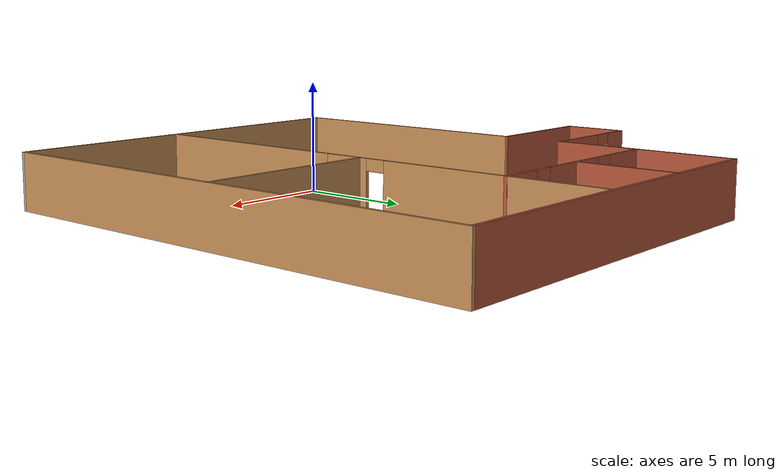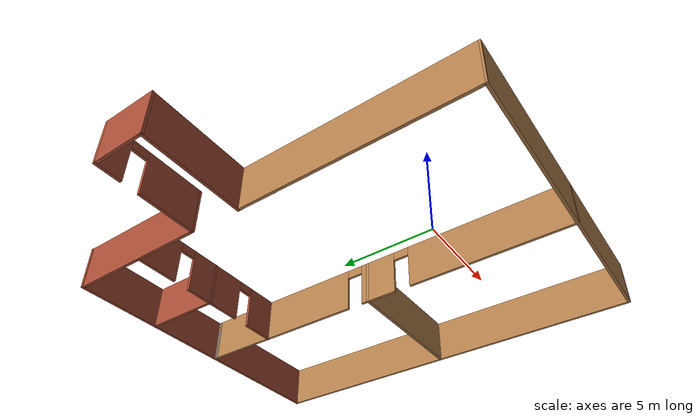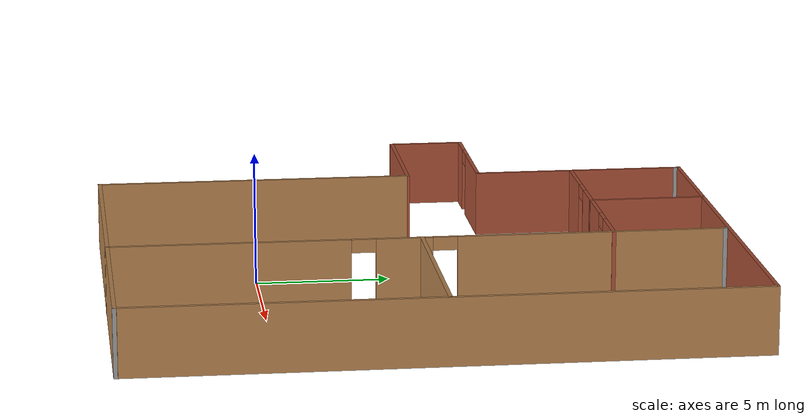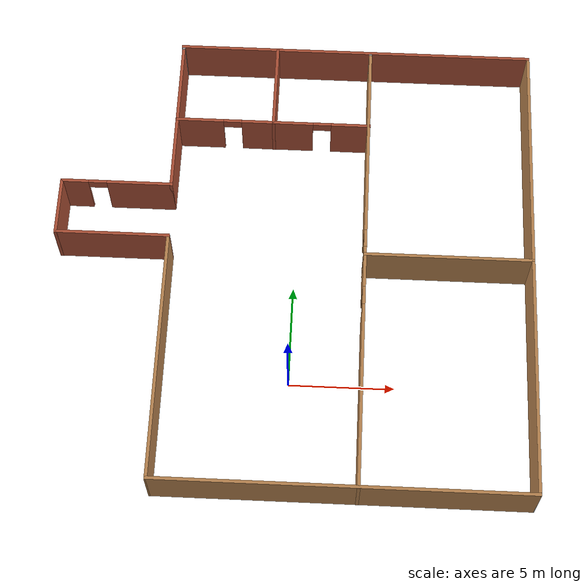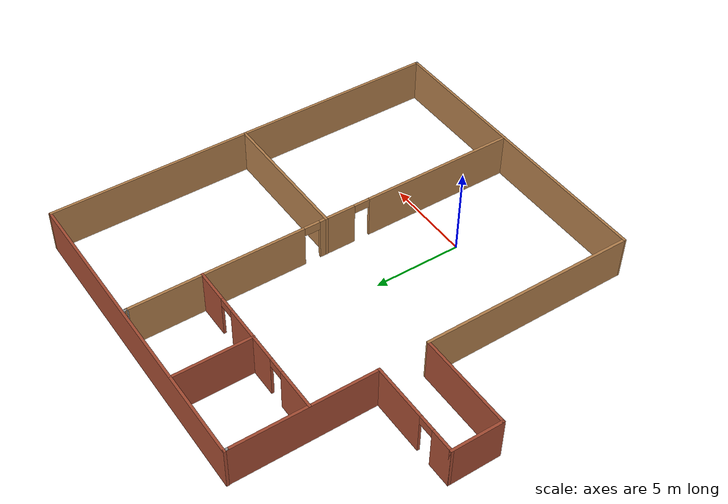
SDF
<?xml version='1.0'?>
<sdf version='1.6'>
  <model name='Building'>
    <pose frame=''>-0.060265 5.8561 0 0 -0 0</pose>
    <link name='Wall_0'>
      <pose frame=''>-8.79073 3.4119 0 0 -0 0</pose>
      <visual name='Wall_0_Visual_0'>
        <pose frame=''>-2.06075 0 1.25 0 -0 0</pose>
        <geometry>
          <box>
            <size>1.3785 0.15 2.5</size>
          </box>
        </geometry>
        <material>
          <script>
            <uri>file://media/materials/scripts/gazebo.material</uri>
            <name>Gazebo/Bricks</name>
          </script>
          <ambient>1 1 1 1</ambient>
        </material>
        <meta>
          <layer>0</layer>
        </meta>
      </visual>
      <collision name='Wall_0_Collision_0'>
        <geometry>
          <box>
            <size>1.3785 0.15 2.5</size>
          </box>
        </geometry>
        <pose frame=''>-2.06075 0 1.25 0 -0 0</pose>
      </collision>
      <visual name='Wall_0_Visual_1'>
        <pose frame=''>1.13925 0 1.25 0 -0 0</pose>
        <geometry>
          <box>
            <size>3.2215 0.15 2.5</size>
          </box>
        </geometry>
        <material>
          <script>
            <uri>file://media/materials/scripts/gazebo.material</uri>
            <name>Gazebo/Bricks</name>
          </script>
          <ambient>1 1 1 1</ambient>
        </material>
        <meta>
          <layer>0</layer>
        </meta>
      </visual>
      <collision name='Wall_0_Collision_1'>
        <geometry>
          <box>
            <size>3.2215 0.15 2.5</size>
          </box>
        </geometry>
        <pose frame=''>1.13925 0 1.25 0 -0 0</pose>
      </collision>
      <visual name='Wall_0_Visual_2'>
        <pose frame=''>-0.921499 0 2.25 0 -0 0</pose>
        <geometry>
          <box>
            <size>0.9 0.15 0.5</size>
          </box>
        </geometry>
        <material>
          <script>
            <uri>file://media/materials/scripts/gazebo.material</uri>
            <name>Gazebo/Bricks</name>
          </script>
          <ambient>1 1 1 1</ambient>
        </material>
        <meta>
          <layer>0</layer>
        </meta>
      </visual>
      <collision name='Wall_0_Collision_2'>
        <geometry>
          <box>
            <size>0.9 0.15 0.5</size>
          </box>
        </geometry>
        <pose frame=''>-0.921499 0 2.25 0 -0 0</pose>
      </collision>
    </link>
    <link name='Wall_1'>
      <collision name='Wall_1_Collision'>
        <geometry>
          <box>
            <size>8.232 0.15 2.5</size>
          </box>
        </geometry>
        <pose frame=''>0 0 1.25 0 -0 0</pose>
      </collision>
      <visual name='Wall_1_Visual'>
        <pose frame=''>0 0 1.25 0 -0 0</pose>
        <geometry>
          <box>
            <size>8.232 0.15 2.5</size>
          </box>
        </geometry>
        <material>
          <script>
            <uri>file://media/materials/scripts/gazebo.material</uri>
            <name>Gazebo/Bricks</name>
          </script>
          <ambient>1 1 1 1</ambient>
        </material>
        <meta>
          <layer>0</layer>
        </meta>
      </visual>
      <pose frame=''>-6.11573 7.4529 0 0 -0 1.5708</pose>
    </link>
    <link name='Wall_10'>
      <collision name='Wall_10_Collision'>
        <geometry>
          <box>
            <size>23 0.15 2.5</size>
          </box>
        </geometry>
        <pose frame=''>0 0 1.25 0 -0 0</pose>
      </collision>
      <visual name='Wall_10_Visual'>
        <pose frame=''>0 0 1.25 0 -0 0</pose>
        <geometry>
          <box>
            <size>23 0.15 2.5</size>
          </box>
        </geometry>
        <material>
          <script>
            <uri>file://media/materials/scripts/gazebo.material</uri>
            <name>Gazebo/Wood</name>
          </script>
          <ambient>0.996078 0.47451 0.0196078 1</ambient>
        </material>
        <meta>
          <layer>0</layer>
        </meta>
      </visual>
      <pose frame=''>11.4655 0.080949 0 0 0 -1.57078</pose>
    </link>
    <link name='Wall_14'>
      <collision name='Wall_14_Collision'>
        <geometry>
          <box>
            <size>17.629 0.15 2.5</size>
          </box>
        </geometry>
        <pose frame=''>0 0 1.25 0 -0 0</pose>
      </collision>
      <visual name='Wall_14_Visual'>
        <pose frame=''>0 0 1.25 0 -0 0</pose>
        <geometry>
          <box>
            <size>17.629 0.15 2.5</size>
          </box>
        </geometry>
        <material>
          <script>
            <uri>file://media/materials/scripts/gazebo.material</uri>
            <name>Gazebo/Wood</name>
          </script>
          <ambient>0.996078 0.47451 0.0196078 1</ambient>
        </material>
        <meta>
          <layer>0</layer>
        </meta>
      </visual>
      <pose frame=''>2.72077 -11.4971 0 0 -0 0</pose>
    </link>
    <link name='Wall_15'>
      <collision name='Wall_15_Collision'>
        <geometry>
          <box>
            <size>0.15 0.15 2.5</size>
          </box>
        </geometry>
        <pose frame=''>0 0 1.25 0 -0 0</pose>
      </collision>
      <visual name='Wall_15_Visual'>
        <pose frame=''>0 0 1.25 0 -0 0</pose>
        <geometry>
          <box>
            <size>0.15 0.15 2.5</size>
          </box>
        </geometry>
        <material>
          <script>
            <uri>file://media/materials/scripts/gazebo.material</uri>
            <name>Gazebo/Grey</name>
          </script>
          <ambient>1 1 1 1</ambient>
        </material>
        <meta>
          <layer>0</layer>
        </meta>
      </visual>
      <pose frame=''>11.4603 -11.4971 0 0 -0 0</pose>
    </link>
    <link name='Wall_18'>
      <collision name='Wall_18_Collision'>
        <geometry>
          <box>
            <size>12.25 0.15 2.5</size>
          </box>
        </geometry>
        <pose frame=''>0 0 1.25 0 -0 0</pose>
      </collision>
      <visual name='Wall_18_Visual'>
        <pose frame=''>0 0 1.25 0 -0 0</pose>
        <geometry>
          <box>
            <size>12.25 0.15 2.5</size>
          </box>
        </geometry>
        <material>
          <script>
            <uri>file://media/materials/scripts/gazebo.material</uri>
            <name>Gazebo/Wood</name>
          </script>
          <ambient>0.996078 0.47451 0.0196078 1</ambient>
        </material>
        <meta>
          <layer>0</layer>
        </meta>
      </visual>
      <pose frame=''>-6.02333 -5.4471 0 0 -0 1.57156</pose>
    </link>
    <link name='Wall_21'>
      <collision name='Wall_21_Collision'>
        <geometry>
          <box>
            <size>2.968 0.15 2.5</size>
          </box>
        </geometry>
        <pose frame=''>0 0 1.25 0 -0 0</pose>
      </collision>
      <visual name='Wall_21_Visual'>
        <pose frame=''>0 0 1.25 0 -0 0</pose>
        <geometry>
          <box>
            <size>2.968 0.15 2.5</size>
          </box>
        </geometry>
        <material>
          <script>
            <uri>file://media/materials/scripts/gazebo.material</uri>
            <name>Gazebo/Bricks</name>
          </script>
          <ambient>1 1 1 1</ambient>
        </material>
        <meta>
          <layer>0</layer>
        </meta>
      </visual>
      <pose frame=''>-11.4657 2.0029 0 0 0 -1.5708</pose>
    </link>
    <link name='Wall_25'>
      <collision name='Wall_25_Collision'>
        <geometry>
          <box>
            <size>5.5618 0.15 2.5</size>
          </box>
        </geometry>
        <pose frame=''>0 0 1.25 0 -0 0</pose>
      </collision>
      <visual name='Wall_25_Visual'>
        <pose frame=''>0 0 1.25 0 -0 0</pose>
        <geometry>
          <box>
            <size>5.5618 0.15 2.5</size>
          </box>
        </geometry>
        <material>
          <script>
            <uri>file://media/materials/scripts/gazebo.material</uri>
            <name>Gazebo/Bricks</name>
          </script>
          <ambient>1 1 1 1</ambient>
        </material>
        <meta>
          <layer>0</layer>
        </meta>
      </visual>
      <pose frame=''>-8.73383 0.602898 0 0 -0 3.14159</pose>
    </link>
    <link name='Wall_28'>
      <pose frame=''>3.44626 -0.112102 0 0 -0 1.5708</pose>
      <visual name='Wall_28_Visual_0'>
        <pose frame=''>-6.97297 0 1.25 0 -0 0</pose>
        <geometry>
          <box>
            <size>8.99175 0.15 2.5</size>
          </box>
        </geometry>
        <material>
          <script>
            <uri>file://media/materials/scripts/gazebo.material</uri>
            <name>Gazebo/Wood</name>
          </script>
          <ambient>0.996078 0.47451 0.0196078 1</ambient>
        </material>
        <meta>
          <layer>0</layer>
        </meta>
      </visual>
      <collision name='Wall_28_Collision_0'>
        <geometry>
          <box>
            <size>8.99175 0.15 2.5</size>
          </box>
        </geometry>
        <pose frame=''>-6.97297 0 1.25 0 -0 0</pose>
      </collision>
      <visual name='Wall_28_Visual_1'>
        <pose frame=''>-0.516704 0 1.25 0 -0 0</pose>
        <geometry>
          <box>
            <size>2.12078 0.15 2.5</size>
          </box>
        </geometry>
        <material>
          <script>
            <uri>file://media/materials/scripts/gazebo.material</uri>
            <name>Gazebo/Wood</name>
          </script>
          <ambient>0.996078 0.47451 0.0196078 1</ambient>
        </material>
        <meta>
          <layer>0</layer>
        </meta>
      </visual>
      <collision name='Wall_28_Collision_1'>
        <geometry>
          <box>
            <size>2.12078 0.15 2.5</size>
          </box>
        </geometry>
        <pose frame=''>-0.516704 0 1.25 0 -0 0</pose>
      </collision>
      <visual name='Wall_28_Visual_2'>
        <pose frame=''>6.45627 0 1.25 0 -0 0</pose>
        <geometry>
          <box>
            <size>10.0252 0.15 2.5</size>
          </box>
        </geometry>
        <material>
          <script>
            <uri>file://media/materials/scripts/gazebo.material</uri>
            <name>Gazebo/Wood</name>
          </script>
          <ambient>0.996078 0.47451 0.0196078 1</ambient>
        </material>
        <meta>
          <layer>0</layer>
        </meta>
      </visual>
      <collision name='Wall_28_Collision_2'>
        <geometry>
          <box>
            <size>10.0252 0.15 2.5</size>
          </box>
        </geometry>
        <pose frame=''>6.45627 0 1.25 0 -0 0</pose>
      </collision>
      <visual name='Wall_28_Visual_3'>
        <pose frame=''>-2.02709 0 2.25 0 -0 0</pose>
        <geometry>
          <box>
            <size>0.9 0.15 0.5</size>
          </box>
        </geometry>
        <material>
          <script>
            <uri>file://media/materials/scripts/gazebo.material</uri>
            <name>Gazebo/Wood</name>
          </script>
          <ambient>0.996078 0.47451 0.0196078 1</ambient>
        </material>
        <meta>
          <layer>0</layer>
        </meta>
      </visual>
      <collision name='Wall_28_Collision_3'>
        <geometry>
          <box>
            <size>0.9 0.15 0.5</size>
          </box>
        </geometry>
        <pose frame=''>-2.02709 0 2.25 0 -0 0</pose>
      </collision>
      <visual name='Wall_28_Visual_4'>
        <pose frame=''>0.993685 0 2.25 0 -0 0</pose>
        <geometry>
          <box>
            <size>0.9 0.15 0.5</size>
          </box>
        </geometry>
        <material>
          <script>
            <uri>file://media/materials/scripts/gazebo.material</uri>
            <name>Gazebo/Wood</name>
          </script>
          <ambient>0.996078 0.47451 0.0196078 1</ambient>
        </material>
        <meta>
          <layer>0</layer>
        </meta>
      </visual>
      <collision name='Wall_28_Collision_4'>
        <geometry>
          <box>
            <size>0.9 0.15 0.5</size>
          </box>
        </geometry>
        <pose frame=''>0.993685 0 2.25 0 -0 0</pose>
      </collision>
    </link>
    <link name='Wall_30'>
      <collision name='Wall_30_Collision'>
        <geometry>
          <box>
            <size>8.172 0.15 2.5</size>
          </box>
        </geometry>
        <pose frame=''>0 0 1.25 0 -0 0</pose>
      </collision>
      <visual name='Wall_30_Visual'>
        <pose frame=''>0 0 1.25 0 -0 0</pose>
        <geometry>
          <box>
            <size>8.172 0.15 2.5</size>
          </box>
        </geometry>
        <material>
          <script>
            <uri>file://media/materials/scripts/gazebo.material</uri>
            <name>Gazebo/Wood</name>
          </script>
          <ambient>0.996078 0.47451 0.0196078 1</ambient>
        </material>
        <meta>
          <layer>0</layer>
        </meta>
      </visual>
      <pose frame=''>7.44926 0.031898 0 0 -0 0</pose>
    </link>
    <link name='Wall_32'>
      <pose frame=''>-1.32323 7.1579 0 0 -0 0</pose>
      <visual name='Wall_32_Visual_0'>
        <pose frame=''>-3.66568 0 1.25 0 -0 0</pose>
        <geometry>
          <box>
            <size>2.38565 0.15 2.5</size>
          </box>
        </geometry>
        <material>
          <script>
            <uri>file://media/materials/scripts/gazebo.material</uri>
            <name>Gazebo/Bricks</name>
          </script>
          <ambient>1 1 1 1</ambient>
        </material>
        <meta>
          <layer>0</layer>
        </meta>
      </visual>
      <collision name='Wall_32_Collision_0'>
        <geometry>
          <box>
            <size>2.38565 0.15 2.5</size>
          </box>
        </geometry>
        <pose frame=''>-3.66568 0 1.25 0 -0 0</pose>
      </collision>
      <visual name='Wall_32_Visual_1'>
        <pose frame=''>0.210013 0 1.25 0 -0 0</pose>
        <geometry>
          <box>
            <size>3.56573 0.15 2.5</size>
          </box>
        </geometry>
        <material>
          <script>
            <uri>file://media/materials/scripts/gazebo.material</uri>
            <name>Gazebo/Bricks</name>
          </script>
          <ambient>1 1 1 1</ambient>
        </material>
        <meta>
          <layer>0</layer>
        </meta>
      </visual>
      <collision name='Wall_32_Collision_1'>
        <geometry>
          <box>
            <size>3.56573 0.15 2.5</size>
          </box>
        </geometry>
        <pose frame=''>0.210013 0 1.25 0 -0 0</pose>
      </collision>
      <visual name='Wall_32_Visual_2'>
        <pose frame=''>3.87569 0 1.25 0 -0 0</pose>
        <geometry>
          <box>
            <size>1.96562 0.15 2.5</size>
          </box>
        </geometry>
        <material>
          <script>
            <uri>file://media/materials/scripts/gazebo.material</uri>
            <name>Gazebo/Bricks</name>
          </script>
          <ambient>1 1 1 1</ambient>
        </material>
        <meta>
          <layer>0</layer>
        </meta>
      </visual>
      <collision name='Wall_32_Collision_2'>
        <geometry>
          <box>
            <size>1.96562 0.15 2.5</size>
          </box>
        </geometry>
        <pose frame=''>3.87569 0 1.25 0 -0 0</pose>
      </collision>
      <visual name='Wall_32_Visual_3'>
        <pose frame=''>-2.02285 0 2.25 0 -0 0</pose>
        <geometry>
          <box>
            <size>0.9 0.15 0.5</size>
          </box>
        </geometry>
        <material>
          <script>
            <uri>file://media/materials/scripts/gazebo.material</uri>
            <name>Gazebo/Bricks</name>
          </script>
          <ambient>1 1 1 1</ambient>
        </material>
        <meta>
          <layer>0</layer>
        </meta>
      </visual>
      <collision name='Wall_32_Collision_3'>
        <geometry>
          <box>
            <size>0.9 0.15 0.5</size>
          </box>
        </geometry>
        <pose frame=''>-2.02285 0 2.25 0 -0 0</pose>
      </collision>
      <visual name='Wall_32_Visual_4'>
        <pose frame=''>2.44288 0 2.25 0 -0 0</pose>
        <geometry>
          <box>
            <size>0.9 0.15 0.5</size>
          </box>
        </geometry>
        <material>
          <script>
            <uri>file://media/materials/scripts/gazebo.material</uri>
            <name>Gazebo/Bricks</name>
          </script>
          <ambient>1 1 1 1</ambient>
        </material>
        <meta>
          <layer>0</layer>
        </meta>
      </visual>
      <collision name='Wall_32_Collision_4'>
        <geometry>
          <box>
            <size>0.9 0.15 0.5</size>
          </box>
        </geometry>
        <pose frame=''>2.44288 0 2.25 0 -0 0</pose>
      </collision>
    </link>
    <link name='Wall_34'>
      <collision name='Wall_34_Collision'>
        <geometry>
          <box>
            <size>4.45 0.15 2.5</size>
          </box>
        </geometry>
        <pose frame=''>0 0 1.25 0 -0 0</pose>
      </collision>
      <visual name='Wall_34_Visual'>
        <pose frame=''>0 0 1.25 0 -0 0</pose>
        <geometry>
          <box>
            <size>4.45 0.15 2.5</size>
          </box>
        </geometry>
        <material>
          <script>
            <uri>file://media/materials/scripts/gazebo.material</uri>
            <name>Gazebo/Bricks</name>
          </script>
          <ambient>1 1 1 1</ambient>
        </material>
        <meta>
          <layer>0</layer>
        </meta>
      </visual>
      <pose frame=''>-1.30273 9.2939 0 0 0 -1.5708</pose>
    </link>
    <link name='Wall_38'>
      <collision name='Wall_38_Collision'>
        <geometry>
          <box>
            <size>0.25 0.15 2.5</size>
          </box>
        </geometry>
        <pose frame=''>0 0 1.25 0 -0 0</pose>
      </collision>
      <visual name='Wall_38_Visual'>
        <pose frame=''>0 0 1.25 0 -0 0</pose>
        <geometry>
          <box>
            <size>0.25 0.15 2.5</size>
          </box>
        </geometry>
        <material>
          <script>
            <uri>file://media/materials/scripts/gazebo.material</uri>
            <name>Gazebo/Grey</name>
          </script>
          <ambient>1 1 1 1</ambient>
        </material>
        <meta>
          <layer>0</layer>
        </meta>
      </visual>
      <pose frame=''>3.44649 11.3317 0 0 -0 1.56636</pose>
    </link>
    <link name='Wall_4'>
      <collision name='Wall_4_Collision'>
        <geometry>
          <box>
            <size>0.15 0.15 2.5</size>
          </box>
        </geometry>
        <pose frame=''>0 0 1.25 0 -0 0</pose>
      </collision>
      <visual name='Wall_4_Visual'>
        <pose frame=''>0 0 1.25 0 -0 0</pose>
        <geometry>
          <box>
            <size>0.15 0.15 2.5</size>
          </box>
        </geometry>
        <material>
          <script>
            <uri>file://media/materials/scripts/gazebo.material</uri>
            <name>Gazebo/Grey</name>
          </script>
          <ambient>1 1 1 1</ambient>
        </material>
        <meta>
          <layer>0</layer>
        </meta>
      </visual>
      <pose frame=''>-6.11559 11.362 0 0 -0 0</pose>
    </link>
    <link name='Wall_9'>
      <collision name='Wall_9_Collision'>
        <geometry>
          <box>
            <size>17.755 0.15 2.5</size>
          </box>
        </geometry>
        <pose frame=''>0 0 1.25 0 -0 0</pose>
      </collision>
      <visual name='Wall_9_Visual'>
        <pose frame=''>0 0 1.25 0 -0 0</pose>
        <geometry>
          <box>
            <size>17.755 0.15 2.5</size>
          </box>
        </geometry>
        <material>
          <script>
            <uri>file://media/materials/scripts/gazebo.material</uri>
            <name>Gazebo/Bricks</name>
          </script>
          <ambient>1 1 1 1</ambient>
        </material>
        <meta>
          <layer>0</layer>
        </meta>
      </visual>
      <pose frame=''>2.66276 11.5059 0 0 -0 0</pose>
    </link>
    <static>1</static>
  </model>
</sdf>
